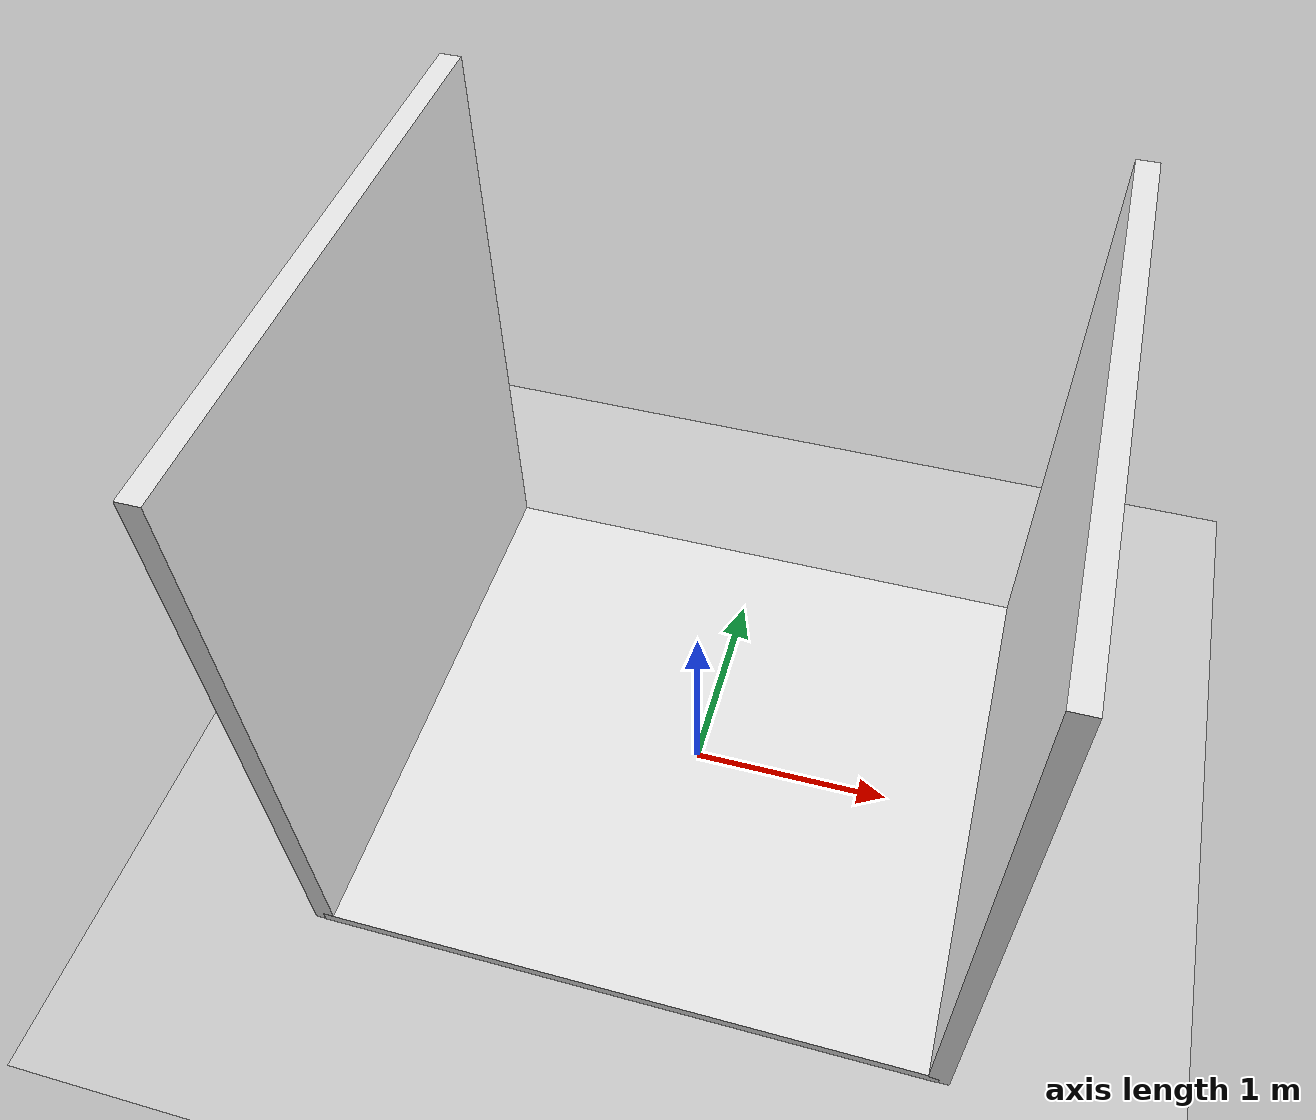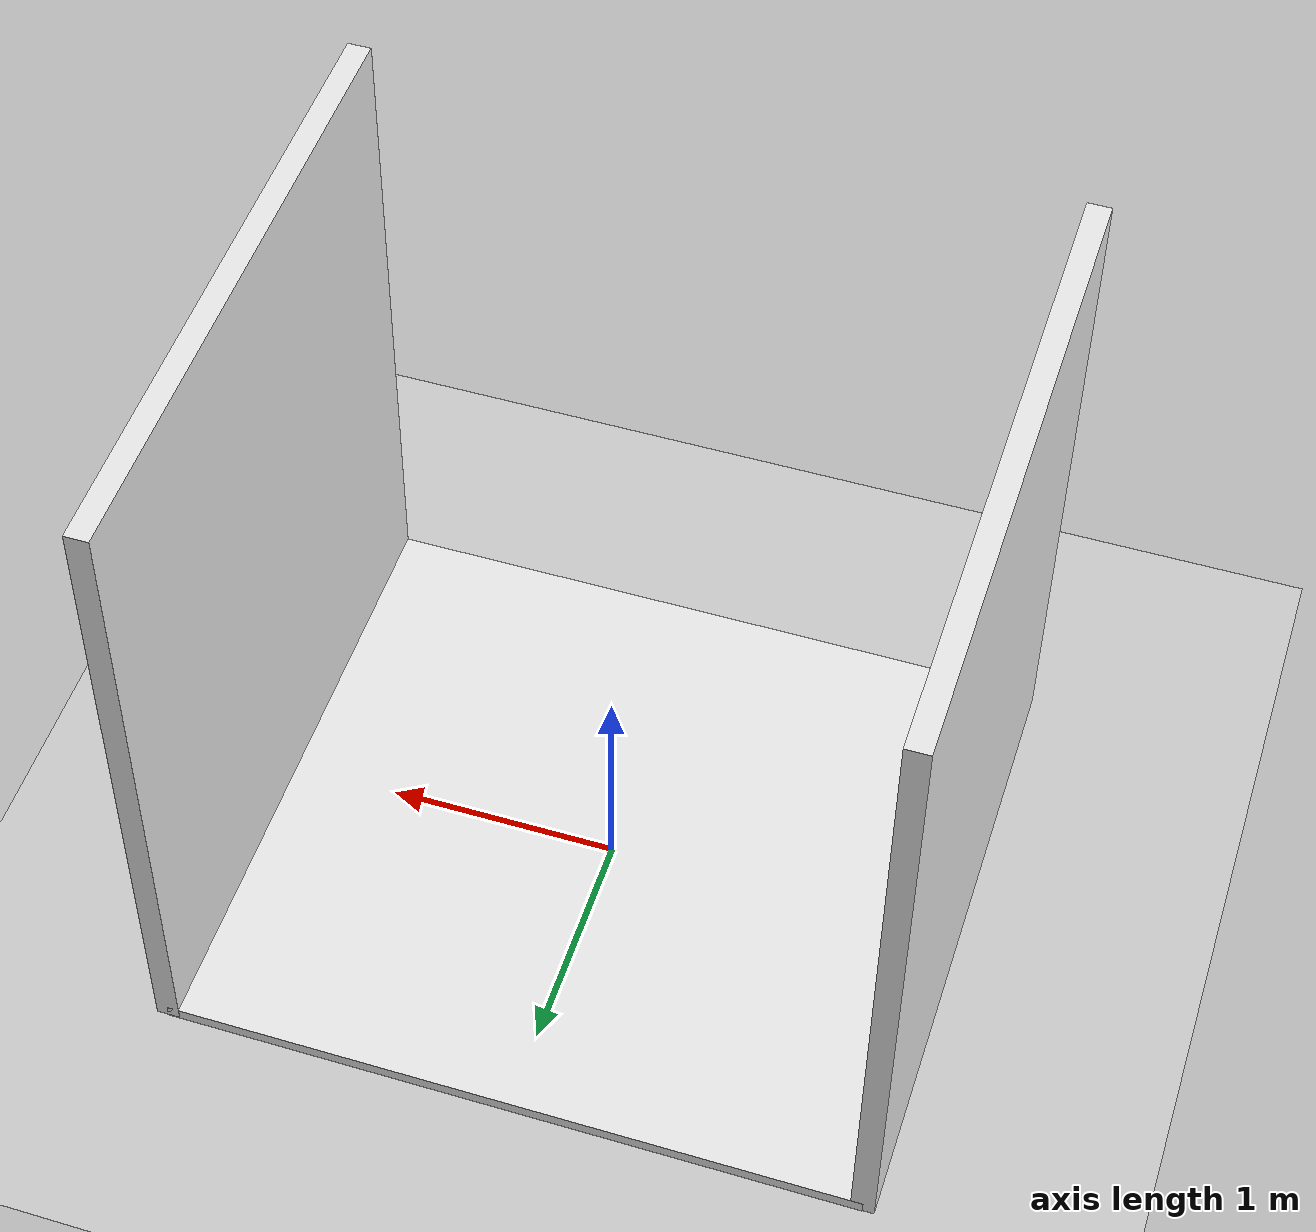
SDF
<?xml version="1.0" ?>
<sdf version="1.4">
  <world name="default">
    <include>
      <uri>model://ground_plane</uri>
    </include>

    <include>
      <uri>model://particle_sphere</uri>
      <name>particle_sphere1</name>
      <pose>0 0 0 0 0 0</pose>
    </include>

    <include>
      <uri>model://particle_sphere</uri>
      <name>particle_sphere2</name>
      <pose>0 0 0 0 0 0</pose>
    </include>

    <include>
      <uri>model://particle_sphere</uri>
      <name>particle_sphere3</name>
      <pose>0 0 0 0 0 0</pose>
    </include>

    <include>
      <uri>model://particle_sphere</uri>
      <name>particle_sphere4</name>
      <pose>0 0 0 0 0 0</pose>
    </include>

    <include>
      <uri>model://particle_sphere</uri>
      <name>particle_sphere5</name>
      <pose>0 0 0 0 0 0</pose>
    </include>

    <include>
      <uri>model://particle_sphere</uri>
      <name>particle_sphere6</name>
      <pose>0 0 0 0 0 0</pose>
    </include>

    <include>
      <uri>model://particle_sphere</uri>
      <name>particle_sphere7</name>
      <pose>0 0 0 0 0 0</pose>
    </include>

    <include>
      <uri>model://particle_sphere</uri>
      <name>particle_sphere8</name>
      <pose>0 0 0 0 0 0</pose>
    </include>

    <include>
      <uri>model://particle_sphere</uri>
      <name>particle_sphere9</name>
      <pose>0 0 0 0 0 0</pose>
    </include>

    <include>
      <uri>model://particle_sphere</uri>
      <name>particle_sphere10</name>
      <pose>0 0 0 0 0 0</pose>
    </include>

    <include>
      <uri>model://particle_sphere</uri>
      <name>particle_sphere11</name>
      <pose>0 0 0 0 0 0</pose>
    </include>

    <include>
      <uri>model://particle_sphere</uri>
      <name>particle_sphere12</name>
      <pose>0 0 0 0 0 0</pose>
    </include>

        <include>
      <uri>model://particle_sphere</uri>
      <name>particle_sphere13</name>
      <pose>0 0 0 0 0 0</pose>
    </include>

    <include>
      <uri>model://particle_sphere</uri>
      <name>particle_sphere14</name>
      <pose>0 0 0 0 0 0</pose>
    </include>

    <include>
      <uri>model://particle_sphere</uri>
      <name>particle_sphere15</name>
      <pose>0 0 0 0 0 0</pose>
    </include>

    <include>
      <uri>model://particle_sphere</uri>
      <name>particle_sphere16</name>
      <pose>0 0 0 0 0 0</pose>
    </include>

    <include>
      <uri>model://particle_sphere</uri>
      <name>particle_sphere17</name>
      <pose>0 0 0 0 0 0</pose>
    </include>

    <include>
      <uri>model://particle_sphere</uri>
      <name>particle_sphere18</name>
      <pose>0 0 0 0 0 0</pose>
    </include>

    <include>
      <uri>model://particle_sphere</uri>
      <name>particle_sphere19</name>
      <pose>0 0 0 0 0 0</pose>
    </include>

    <include>
      <uri>model://particle_sphere</uri>
      <name>particle_sphere20</name>
      <pose>0 0 0 0 0 0</pose>
    </include>

    <include>
      <uri>model://particle_sphere</uri>
      <name>particle_sphere21</name>
      <pose>0 0 0 0 0 0</pose>
    </include>

    <include>
      <uri>model://particle_sphere</uri>
      <name>particle_sphere22</name>
      <pose>0 0 0 0 0 0</pose>
    </include>

    <include>
      <uri>model://particle_sphere</uri>
      <name>particle_sphere23</name>
      <pose>0 0 0 0 0 0</pose>
    </include>

    <include>
      <uri>model://particle_sphere</uri>
      <name>particle_sphere24</name>
      <pose>0 0 0 0 0 0</pose>
    </include>

        <include>
      <uri>model://particle_sphere</uri>
      <name>particle_sphere25</name>
      <pose>0 0 0 0 0 0</pose>
    </include>

    <include>
      <uri>model://particle_sphere</uri>
      <name>particle_sphere26</name>
      <pose>0 0 0 0 0 0</pose>
    </include>

    <include>
      <uri>model://particle_sphere</uri>
      <name>particle_sphere27</name>
      <pose>0 0 0 0 0 0</pose>
    </include>

    <include>
      <uri>model://particle_sphere</uri>
      <name>particle_sphere28</name>
      <pose>0 0 0 0 0 0</pose>
    </include>

    <include>
      <uri>model://particle_sphere</uri>
      <name>particle_sphere29</name>
      <pose>0 0 0 0 0 0</pose>
    </include>

    <include>
      <uri>model://particle_sphere</uri>
      <name>particle_sphere30</name>
      <pose>0 0 0 0 0 0</pose>
    </include>

    <include>
      <uri>model://particle_sphere</uri>
      <name>particle_sphere31</name>
      <pose>0 0 0 0 0 0</pose>
    </include>

    <include>
      <uri>model://particle_sphere</uri>
      <name>particle_sphere32</name>
      <pose>0 0 0 0 0 0</pose>
    </include>

    <include>
      <uri>model://particle_sphere</uri>
      <name>particle_sphere33</name>
      <pose>0 0 0 0 0 0</pose>
    </include>

    <include>
      <uri>model://particle_sphere</uri>
      <name>particle_sphere34</name>
      <pose>0 0 0 0 0 0</pose>
    </include>

    <include>
      <uri>model://particle_sphere</uri>
      <name>particle_sphere35</name>
      <pose>0 0 0 0 0 0</pose>
    </include>

    <include>
      <uri>model://particle_sphere</uri>
      <name>particle_sphere36</name>
      <pose>0 0 0 0 0 0</pose>
    </include>

    <include>
      <uri>model://particle_sphere</uri>
      <name>particle_sphere37</name>
      <pose>0 0 0 0 0 0</pose>
    </include>

    <include>
      <uri>model://particle_sphere</uri>
      <name>particle_sphere38</name>
      <pose>0 0 0 0 0 0</pose>
    </include>

    <include>
      <uri>model://particle_sphere</uri>
      <name>particle_sphere39</name>
      <pose>0 0 0 0 0 0</pose>
    </include>

    <include>
      <uri>model://particle_sphere</uri>
      <name>particle_sphere40</name>
      <pose>0 0 0 0 0 0</pose>
    </include>

    <include>
      <uri>model://particle_sphere</uri>
      <name>particle_sphere41</name>
      <pose>0 0 0 0 0 0</pose>
    </include>

    <include>
      <uri>model://particle_sphere</uri>
      <name>particle_sphere42</name>
      <pose>0 0 0 0 0 0</pose>
    </include>

    <include>
      <uri>model://particle_sphere</uri>
      <name>particle_sphere43</name>
      <pose>0 0 0 0 0 0</pose>
    </include>

    <include>
      <uri>model://particle_sphere</uri>
      <name>particle_sphere44</name>
      <pose>0 0 0 0 0 0</pose>
    </include>

    <include>
      <uri>model://particle_sphere</uri>
      <name>particle_sphere45</name>
      <pose>0 0 0 0 0 0</pose>
    </include>

    <include>
      <uri>model://particle_sphere</uri>
      <name>particle_sphere46</name>
      <pose>0 0 0 0 0 0</pose>
    </include>

    <include>
      <uri>model://particle_sphere</uri>
      <name>particle_sphere47</name>
      <pose>0 0 0 0 0 0</pose>
    </include>

    <include>
      <uri>model://particle_sphere</uri>
      <name>particle_sphere48</name>
      <pose>0 0 0 0 0 0</pose>
    </include>

        <include>
      <uri>model://particle_sphere</uri>
      <name>particle_sphere49</name>
      <pose>0 0 0 0 0 0</pose>
    </include>

    <include>
      <uri>model://particle_sphere</uri>
      <name>particle_sphere50</name>
      <pose>0 0 0 0 0 0</pose>
    </include>

    <include>
      <uri>model://particle_sphere</uri>
      <name>particle_sphere51</name>
      <pose>0 0 0 0 0 0</pose>
    </include>

    <include>
      <uri>model://particle_sphere</uri>
      <name>particle_sphere52</name>
      <pose>0 0 0 0 0 0</pose>
    </include>

    <include>
      <uri>model://particle_sphere</uri>
      <name>particle_sphere53</name>
      <pose>0 0 0 0 0 0</pose>
    </include>

    <include>
      <uri>model://particle_sphere</uri>
      <name>particle_sphere54</name>
      <pose>0 0 0 0 0 0</pose>
    </include>

    <include>
      <uri>model://particle_sphere</uri>
      <name>particle_sphere55</name>
      <pose>0 0 0 0 0 0</pose>
    </include>

    <include>
      <uri>model://particle_sphere</uri>
      <name>particle_sphere56</name>
      <pose>0 0 0 0 0 0</pose>
    </include>

    <include>
      <uri>model://particle_sphere</uri>
      <name>particle_sphere57</name>
      <pose>0 0 0 0 0 0</pose>
    </include>

    <include>
      <uri>model://particle_sphere</uri>
      <name>particle_sphere58</name>
      <pose>0 0 0 0 0 0</pose>
    </include>

    <include>
      <uri>model://particle_sphere</uri>
      <name>particle_sphere59</name>
      <pose>0 0 0 0 0 0</pose>
    </include>

    <include>
      <uri>model://particle_sphere</uri>
      <name>particle_sphere60</name>
      <pose>0 0 0 0 0 0</pose>
    </include>

        <include>
      <uri>model://particle_sphere</uri>
      <name>particle_sphere61</name>
      <pose>0 0 0 0 0 0</pose>
    </include>

    <include>
      <uri>model://particle_sphere</uri>
      <name>particle_sphere62</name>
      <pose>0 0 0 0 0 0</pose>
    </include>

    <include>
      <uri>model://particle_sphere</uri>
      <name>particle_sphere63</name>
      <pose>0 0 0 0 0 0</pose>
    </include>

    <include>
      <uri>model://particle_sphere</uri>
      <name>particle_sphere64</name>
      <pose>0 0 0 0 0 0</pose>
    </include>

    <include>
      <uri>model://particle_sphere</uri>
      <name>particle_sphere65</name>
      <pose>0 0 0 0 0 0</pose>
    </include>

    <include>
      <uri>model://particle_sphere</uri>
      <name>particle_sphere66</name>
      <pose>0 0 0 0 0 0</pose>
    </include>

    <include>
      <uri>model://particle_sphere</uri>
      <name>particle_sphere67</name>
      <pose>0 0 0 0 0 0</pose>
    </include>

    <include>
      <uri>model://particle_sphere</uri>
      <name>particle_sphere68</name>
      <pose>0 0 0 0 0 0</pose>
    </include>

    <include>
      <uri>model://particle_sphere</uri>
      <name>particle_sphere69</name>
      <pose>0 0 0 0 0 0</pose>
    </include>

    <include>
      <uri>model://particle_sphere</uri>
      <name>particle_sphere70</name>
      <pose>0 0 0 0 0 0</pose>
    </include>

    <include>
      <uri>model://particle_sphere</uri>
      <name>particle_sphere71</name>
      <pose>0 0 0 0 0 0</pose>
    </include>

    <include>
      <uri>model://particle_sphere</uri>
      <name>particle_sphere72</name>
      <pose>0 0 0 0 0 0</pose>
    </include>

        <include>
      <uri>model://particle_sphere</uri>
      <name>particle_sphere73</name>
      <pose>0 0 0 0 0 0</pose>
    </include>

    <include>
      <uri>model://particle_sphere</uri>
      <name>particle_sphere74</name>
      <pose>0 0 0 0 0 0</pose>
    </include>

    <include>
      <uri>model://particle_sphere</uri>
      <name>particle_sphere75</name>
      <pose>0 0 0 0 0 0</pose>
    </include>

    <include>
      <uri>model://particle_sphere</uri>
      <name>particle_sphere76</name>
      <pose>0 0 0 0 0 0</pose>
    </include>

    <include>
      <uri>model://particle_sphere</uri>
      <name>particle_sphere77</name>
      <pose>0 0 0 0 0 0</pose>
    </include>

    <include>
      <uri>model://particle_sphere</uri>
      <name>particle_sphere78</name>
      <pose>0 0 0 0 0 0</pose>
    </include>

    <include>
      <uri>model://particle_sphere</uri>
      <name>particle_sphere79</name>
      <pose>0 0 0 0 0 0</pose>
    </include>

    <include>
      <uri>model://particle_sphere</uri>
      <name>particle_sphere80</name>
      <pose>0 0 0 0 0 0</pose>
    </include>

    <include>
      <uri>model://particle_sphere</uri>
      <name>particle_sphere81</name>
      <pose>0 0 0 0 0 0</pose>
    </include>

    <include>
      <uri>model://particle_sphere</uri>
      <name>particle_sphere82</name>
      <pose>0 0 0 0 0 0</pose>
    </include>

    <include>
      <uri>model://particle_sphere</uri>
      <name>particle_sphere83</name>
      <pose>0 0 0 0 0 0</pose>
    </include>

    <include>
      <uri>model://particle_sphere</uri>
      <name>particle_sphere84</name>
      <pose>0 0 0 0 0 0</pose>
    </include>

    <include>
      <uri>model://particle_sphere</uri>
      <name>particle_sphere85</name>
      <pose>0 0 0 0 0 0</pose>
    </include>

    <include>
      <uri>model://particle_sphere</uri>
      <name>particle_sphere86</name>
      <pose>0 0 0 0 0 0</pose>
    </include>

    <include>
      <uri>model://particle_sphere</uri>
      <name>particle_sphere87</name>
      <pose>0 0 0 0 0 0</pose>
    </include>

    <include>
      <uri>model://particle_sphere</uri>
      <name>particle_sphere88</name>
      <pose>0 0 0 0 0 0</pose>
    </include>

    <include>
      <uri>model://particle_sphere</uri>
      <name>particle_sphere89</name>
      <pose>0 0 0 0 0 0</pose>
    </include>

    <include>
      <uri>model://particle_sphere</uri>
      <name>particle_sphere90</name>
      <pose>0 0 0 0 0 0</pose>
    </include>

    <include>
      <uri>model://particle_sphere</uri>
      <name>particle_sphere91</name>
      <pose>0 0 0 0 0 0</pose>
    </include>

    <include>
      <uri>model://particle_sphere</uri>
      <name>particle_sphere92</name>
      <pose>0 0 0 0 0 0</pose>
    </include>

    <include>
      <uri>model://particle_sphere</uri>
      <name>particle_sphere93</name>
      <pose>0 0 0 0 0 0</pose>
    </include>

    <include>
      <uri>model://particle_sphere</uri>
      <name>particle_sphere94</name>
      <pose>0 0 0 0 0 0</pose>
    </include>

    <include>
      <uri>model://particle_sphere</uri>
      <name>particle_sphere95</name>
      <pose>0 0 0 0 0 0</pose>
    </include>

    <include>
      <uri>model://particle_sphere</uri>
      <name>particle_sphere96</name>
      <pose>0 0 0 0 0 0</pose>
    </include>

    <include>
      <uri>model://particle_sphere</uri>
      <name>particle_sphere97</name>
      <pose>0 0 0 0 0 0</pose>
    </include>

    <include>
      <uri>model://particle_sphere</uri>
      <name>particle_sphere98</name>
      <pose>0 0 0 0 0 0</pose>
    </include>

    <include>
      <uri>model://particle_sphere</uri>
      <name>particle_sphere99</name>
      <pose>0 0 0 0 0 0</pose>
    </include>

    <include>
      <uri>model://particle_sphere</uri>
      <name>particle_sphere100</name>
      <pose>0 0 0 0 0 0</pose>
    </include>

    <include>
      <uri>model://sun</uri>
    </include>

    <include>
      <uri>model://testing_surface</uri>
      <name>vertical_surface1</name>
      <pose>1.5 0 1.5 0 1.57 3.14159</pose>
    </include>

    <include>
      <uri>model://testing_surface</uri>
      <name>testing_surface1</name>
      <pose>0 0 0 0 0 0</pose>
    </include>

    <include>
      <uri>model://testing_surface</uri>
      <name>vertical_surface3</name>
      <pose>-1.5 0 1.5 0 1.57 0</pose>
    </include>

    <joint name = "joint_to_world" type="fixed">
      <parent>world</parent>
      <child>vertical_surface_link::link</child>
    </joint>

    <joint name = "joint_to_world" type="fixed">
      <parent>world</parent>
      <child>testing_surface_link::link</child>
    </joint>

    <atmosphere type='adiabatic'/>
    <scene>
      <sky>
        <clouds>
          <speed>5</speed>
        </clouds>
      </sky>
    </scene>

    <physics name='default_physics' default='0' type='ode'>
      <max_step_size>0.001</max_step_size>
      <real_time_factor>1</real_time_factor>
      <real_time_update_rate>1000</real_time_update_rate>
    </physics>

    <!-- reference to your plugin -->
    <plugin name="particle_shooter_plugin" filename="/home/sml/catkin_ws/build/shooter_particle/libparticle_shooter_plugin.so">
      <reset_frequency>1500000.0</reset_frequency> -->
      <x_axis_force>0.0</x_axis_force>
      <y_axis_force>0.0</y_axis_force> <!-- if i only wan x direction, this would be reset to 0 -->
      <z_axis_force>-5000.0</z_axis_force>
      <alpha>0.0</alpha>

      <x_origin>0.0</x_origin> <!-- original value is 1.0 for the start of the shooting -->
      <y_origin>0.0</y_origin> <!-- original value is 0.0 for the start of the shooting -->
      <z_origin>1.5</z_origin> <!-- original value is 0.5 for the start of the shooting -->

      <random_range>0.0</random_range> <!-- original value is 0.5 for the shot/spray radius -->

    </plugin>

  </world>
</sdf>

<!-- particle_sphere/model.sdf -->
<sdf version='1.4'>
  <model name="particle_sphere">
      <static>0</static>
      <link name='link'>
        <inertial>
          <mass>0.25</mass>
          <inertia>
            <ixx>9e-05</ixx>
            <ixy>0.000000</ixy>
            <ixz>0.000000</ixz>
            <iyy>9e-05</iyy>
            <iyz>0.000000</iyz>
            <izz>9e-05</izz>
          </inertia>
        </inertial>
        <collision name='collision'>
          <geometry>
            <sphere>
              <radius>0.005</radius>
            </sphere>
          </geometry>
          <surface>
            <friction>
              <ode>
                <mu>10.0</mu>
                <mu2>10.0</mu2>
              </ode>
            </friction>
            <contact>
              <ode>
                <kp>75000.0</kp>
                <kd>1000.0</kd>
                <max_vel>0.5</max_vel>
                <min_depth>0.002</min_depth>
              </ode>
            </contact>
          </surface>
        </collision>
        <visual name='visual'>
          <geometry>
            <sphere>
              <radius>0.005</radius>
            </sphere>
          </geometry>
          <material>
            <script>
              <uri>file://media/materials/scripts/gazebo.material</uri>
              <name>Gazebo/Blue</name>
            </script>
          </material>
        </visual>
        <velocity_decay>
          <linear>0.000000</linear>
          <angular>0.000000</angular>
        </velocity_decay>
        <self_collide>1</self_collide>
        <kinematic>0</kinematic>
        <gravity>1</gravity>
      </link>
  </model>
</sdf>

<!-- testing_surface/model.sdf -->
<sdf version='1.4'>
  <model name='testing_surface'>
      <static>1</static>
      <pose frame=''>0 0 0 0 0 0</pose>
      <link name='testing_surface_link'>
        <inertial>
          <mass>0.1</mass>
          <inertia>
            <ixx>8.41666666667e-05</ixx>
            <ixy>0</ixy>
            <ixz>0</ixz>
            <iyy>3.08333333333e-05</iyy>
            <iyz>0</iyz>
            <izz>0.000113333333333</izz>
          </inertia>
        </inertial>
        <collision name='testing_surface_link_collision'>
          <geometry>
            <box>
              <size>3.0 2.75 0.1</size>
            </box>
          </geometry>
          <max_contacts>1000</max_contacts>
          <surface>
            <contact>
              <ode/>
            </contact>
            <bounce/>
            <friction>
              <torsional>
                <ode/>
              </torsional>
              <ode/>
            </friction>
          </surface>
        </collision>
        <visual name='testing_surface_link_visual'>
          <geometry>
            <box>
              <size>3.0 2.75 0.1</size>
            </box>
          </geometry>
          <material>
            <script>
              <uri>file://media/materials/scripts/gazebo.material</uri>
              <name>Gazebo/White</name>
            </script>
          </material>
        </visual>
        <self_collide>0</self_collide>
        <kinematic>0</kinematic>
      </link>
    </model>
</sdf>
